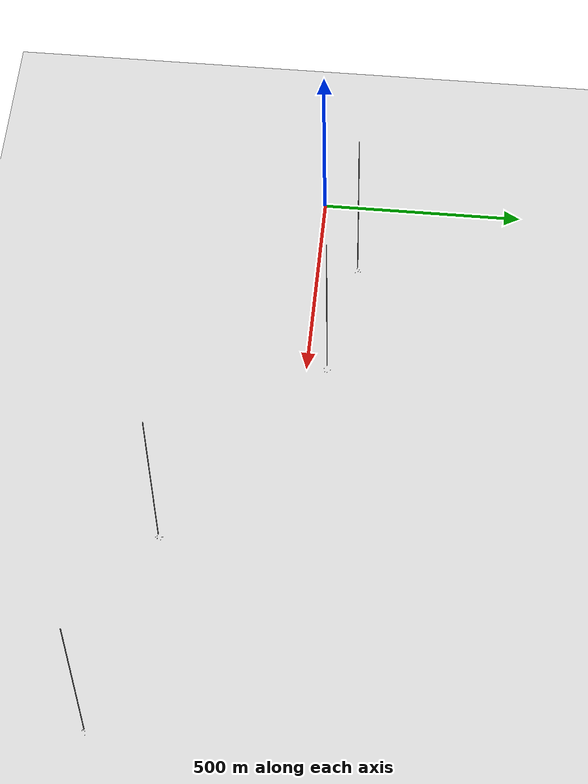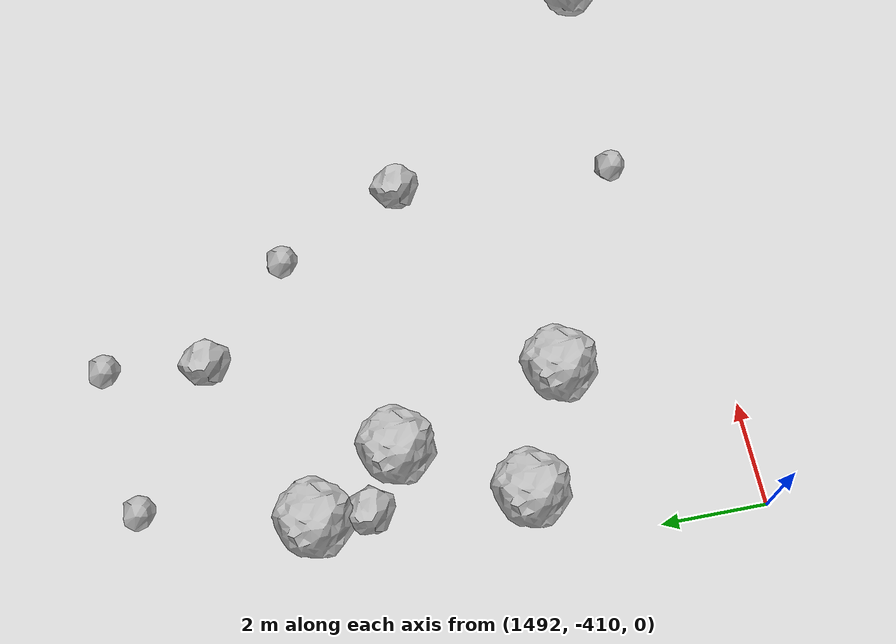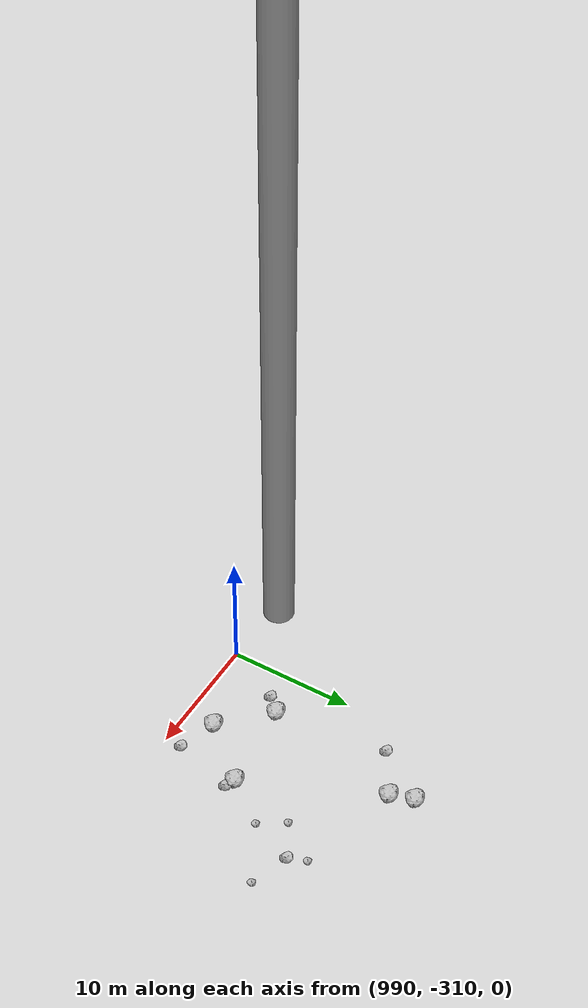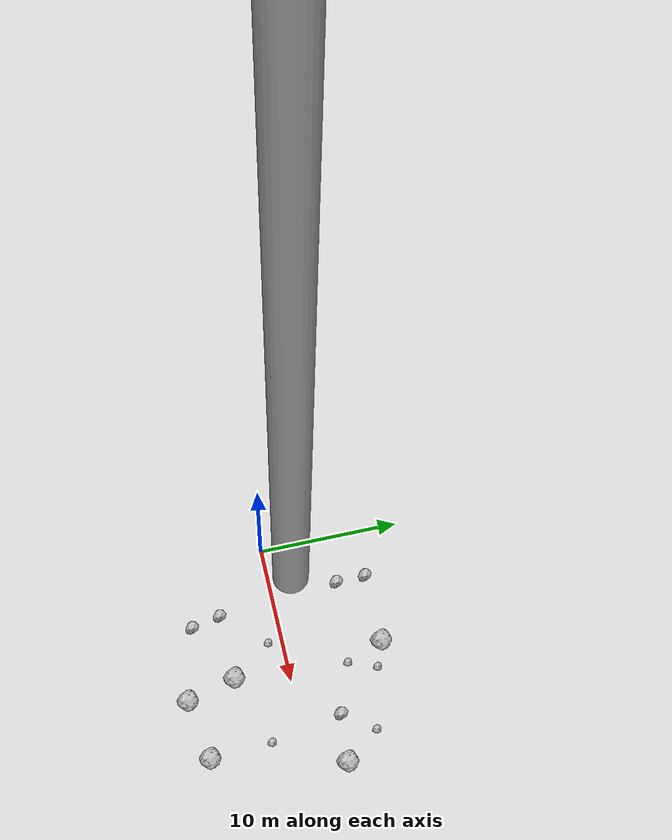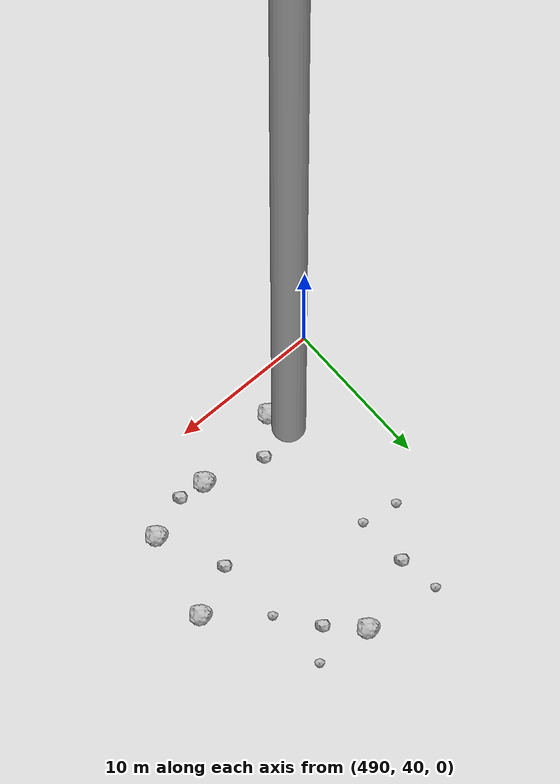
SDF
<?xml version="1.0" ?>
<sdf version="1.6">
  <world name="default">

    <include>
      <uri>model://custom_ground</uri>
    </include>

    <include>
      <uri>model://sun</uri>
    </include>

    <spherical_coordinates>
      <surface_model>EARTH_WGS84</surface_model>
      <latitude_deg>38.161479</latitude_deg>
      <longitude_deg>-122.454630</longitude_deg>
      <elevation>488.0</elevation>
      <heading_deg>90</heading_deg>
    </spherical_coordinates>

    <model name="rock1_0_0">
      <include>
        <uri>model://rock1</uri>
        <pose>14.282473221766805 -6.541813270853938 0.5 0 0 0</pose>
      </include>
    </model>
    <model name="rock1_0_1">
      <include>
        <uri>model://rock1</uri>
        <pose>8.608220406227252 6.780072283379404 0.5 0 0 0</pose>
      </include>
    </model>
    <model name="rock1_0_2">
      <include>
        <uri>model://rock1</uri>
        <pose>9.08124643722343 -3.8135284993997214 0.5 0 0 0</pose>
      </include>
    </model>
    <model name="rock1_0_3">
      <include>
        <uri>model://rock1</uri>
        <pose>10.003770106921559 -7.263664705437371 0.5 0 0 0</pose>
      </include>
    </model>
    <model name="rock1_0_4">
      <include>
        <uri>model://rock1</uri>
        <pose>16.49691729560874 2.506025364816333 0.5 0 0 0</pose>
      </include>
    </model>
    <model name="rock2_0_0">
      <include>
        <uri>model://rock2</uri>
        <pose>4.728759559223398 -5.955498742989709 0.3 0 0 0</pose>
      </include>
    </model>
    <model name="rock2_0_1">
      <include>
        <uri>model://rock2</uri>
        <pose>3.505365785905923 6.859919755507185 0.3 0 0 0</pose>
      </include>
    </model>
    <model name="rock2_0_2">
      <include>
        <uri>model://rock2</uri>
        <pose>13.053172031917782 2.855694127243993 0.3 0 0 0</pose>
      </include>
    </model>
    <model name="rock2_0_3">
      <include>
        <uri>model://rock2</uri>
        <pose>3.5583332384563815 4.750340054283491 0.3 0 0 0</pose>
      </include>
    </model>
    <model name="rock2_0_4">
      <include>
        <uri>model://rock2</uri>
        <pose>4.286497587022307 -3.8965781714265795 0.3 0 0 0</pose>
      </include>
    </model>
    <model name="rock3_0_0">
      <include>
        <uri>model://rock3</uri>
        <pose>6.9604855431901 -0.9890365495011864 0.2 0 0 0</pose>
      </include>
    </model>
    <model name="rock3_0_1">
      <include>
        <uri>model://rock3</uri>
        <pose>14.633510965118727 4.976888527124823 0.2 0 0 0</pose>
      </include>
    </model>
    <model name="rock3_0_2">
      <include>
        <uri>model://rock3</uri>
        <pose>9.553993024239833 4.149317382156024 0.2 0 0 0</pose>
      </include>
    </model>
    <model name="rock3_0_3">
      <include>
        <uri>model://rock3</uri>
        <pose>13.984841646783702 -2.213399155919406 0.2 0 0 0</pose>
      </include>
    </model>
    <model name="rock3_0_4">
      <include>
        <uri>model://rock3</uri>
        <pose>10.31041812376682 6.102980444797904 0.2 0 0 0</pose>
      </include>
    </model>
    <model name="rock1_1_0">
      <include>
        <uri>model://rock1</uri>
        <pose>190.66679078531567 97.47396516944973 0.5 0 0 0</pose>
      </include>
    </model>
    <model name="rock1_1_1">
      <include>
        <uri>model://rock1</uri>
        <pose>203.1644703667694 94.56113320485143 0.5 0 0 0</pose>
      </include>
    </model>
    <model name="rock1_1_2">
      <include>
        <uri>model://rock1</uri>
        <pose>202.99351098685935 104.93904819255101 0.5 0 0 0</pose>
      </include>
    </model>
    <model name="rock1_1_3">
      <include>
        <uri>model://rock1</uri>
        <pose>194.03897529818022 103.58874333359566 0.5 0 0 0</pose>
      </include>
    </model>
    <model name="rock1_1_4">
      <include>
        <uri>model://rock1</uri>
        <pose>199.52528332916225 106.91490275453327 0.5 0 0 0</pose>
      </include>
    </model>
    <model name="rock2_1_0">
      <include>
        <uri>model://rock2</uri>
        <pose>203.95841990752604 93.73779692213546 0.3 0 0 0</pose>
      </include>
    </model>
    <model name="rock2_1_1">
      <include>
        <uri>model://rock2</uri>
        <pose>208.97926409385508 101.37366537899334 0.3 0 0 0</pose>
      </include>
    </model>
    <model name="rock2_1_2">
      <include>
        <uri>model://rock2</uri>
        <pose>195.96664210332213 96.25906966624744 0.3 0 0 0</pose>
      </include>
    </model>
    <model name="rock2_1_3">
      <include>
        <uri>model://rock2</uri>
        <pose>200.11995894299622 95.79932292599678 0.3 0 0 0</pose>
      </include>
    </model>
    <model name="rock2_1_4">
      <include>
        <uri>model://rock2</uri>
        <pose>198.3943785982686 101.70945180024651 0.3 0 0 0</pose>
      </include>
    </model>
    <model name="rock3_1_0">
      <include>
        <uri>model://rock3</uri>
        <pose>200.93125972346132 102.50054354837616 0.2 0 0 0</pose>
      </include>
    </model>
    <model name="rock3_1_1">
      <include>
        <uri>model://rock3</uri>
        <pose>198.79553383127418 91.10684527526729 0.2 0 0 0</pose>
      </include>
    </model>
    <model name="rock3_1_2">
      <include>
        <uri>model://rock3</uri>
        <pose>198.6043335582913 102.42849797942188 0.2 0 0 0</pose>
      </include>
    </model>
    <model name="rock3_1_3">
      <include>
        <uri>model://rock3</uri>
        <pose>202.57077907603986 108.10065685931582 0.2 0 0 0</pose>
      </include>
    </model>
    <model name="rock3_1_4">
      <include>
        <uri>model://rock3</uri>
        <pose>194.09042010726228 104.08590718201569 0.2 0 0 0</pose>
      </include>
    </model>
    <model name="rock1_2_0">
      <include>
        <uri>model://rock1</uri>
        <pose>505.88896733548194 44.189495280112006 0.5 0 0 0</pose>
      </include>
    </model>
    <model name="rock1_2_1">
      <include>
        <uri>model://rock1</uri>
        <pose>495.2237862707641 42.5566943304794 0.5 0 0 0</pose>
      </include>
    </model>
    <model name="rock1_2_2">
      <include>
        <uri>model://rock1</uri>
        <pose>501.2917285582195 43.39678601420264 0.5 0 0 0</pose>
      </include>
    </model>
    <model name="rock1_2_3">
      <include>
        <uri>model://rock1</uri>
        <pose>499.95352624507893 57.41964891604353 0.5 0 0 0</pose>
      </include>
    </model>
    <model name="rock1_2_4">
      <include>
        <uri>model://rock1</uri>
        <pose>507.2194835259564 49.9614988785665 0.5 0 0 0</pose>
      </include>
    </model>
    <model name="rock2_2_0">
      <include>
        <uri>model://rock2</uri>
        <pose>501.88645721584857 55.41772444223143 0.3 0 0 0</pose>
      </include>
    </model>
    <model name="rock2_2_1">
      <include>
        <uri>model://rock2</uri>
        <pose>495.3220676833293 55.37716360409511 0.3 0 0 0</pose>
      </include>
    </model>
    <model name="rock2_2_2">
      <include>
        <uri>model://rock2</uri>
        <pose>503.90972158022964 48.45009312093409 0.3 0 0 0</pose>
      </include>
    </model>
    <model name="rock2_2_3">
      <include>
        <uri>model://rock2</uri>
        <pose>497.27768731633023 44.54690412443465 0.3 0 0 0</pose>
      </include>
    </model>
    <model name="rock2_2_4">
      <include>
        <uri>model://rock2</uri>
        <pose>503.0412618089708 43.16918717067067 0.3 0 0 0</pose>
      </include>
    </model>
    <model name="rock3_2_0">
      <include>
        <uri>model://rock3</uri>
        <pose>495.4542234641676 51.87025784293293 0.2 0 0 0</pose>
      </include>
    </model>
    <model name="rock3_2_1">
      <include>
        <uri>model://rock3</uri>
        <pose>503.7589720254465 52.83826500852081 0.2 0 0 0</pose>
      </include>
    </model>
    <model name="rock3_2_2">
      <include>
        <uri>model://rock3</uri>
        <pose>503.59589528170414 57.07745307162492 0.2 0 0 0</pose>
      </include>
    </model>
    <model name="rock3_2_3">
      <include>
        <uri>model://rock3</uri>
        <pose>494.89437759003533 58.05722618100206 0.2 0 0 0</pose>
      </include>
    </model>
    <model name="rock3_2_4">
      <include>
        <uri>model://rock3</uri>
        <pose>493.0380767912778 52.25726439248041 0.2 0 0 0</pose>
      </include>
    </model>
    <model name="rock1_3_0">
      <include>
        <uri>model://rock1</uri>
        <pose>993.7015138553709 -304.15277288582615 0.5 0 0 0</pose>
      </include>
    </model>
    <model name="rock1_3_1">
      <include>
        <uri>model://rock1</uri>
        <pose>1000.7299808166977 -303.4286053102638 0.5 0 0 0</pose>
      </include>
    </model>
    <model name="rock1_3_2">
      <include>
        <uri>model://rock1</uri>
        <pose>995.4148005126285 -291.2799077358088 0.5 0 0 0</pose>
      </include>
    </model>
    <model name="rock1_3_3">
      <include>
        <uri>model://rock1</uri>
        <pose>997.1560721608233 -307.5888687354902 0.5 0 0 0</pose>
      </include>
    </model>
    <model name="rock1_3_4">
      <include>
        <uri>model://rock1</uri>
        <pose>996.0403897516588 -293.10714119760615 0.5 0 0 0</pose>
      </include>
    </model>
    <model name="rock2_3_0">
      <include>
        <uri>model://rock2</uri>
        <pose>992.4830087994378 -305.3286776140067 0.3 0 0 0</pose>
      </include>
    </model>
    <model name="rock2_3_1">
      <include>
        <uri>model://rock2</uri>
        <pose>1004.4894049696857 -296.6546889945572 0.3 0 0 0</pose>
      </include>
    </model>
    <model name="rock2_3_2">
      <include>
        <uri>model://rock2</uri>
        <pose>1000.0544793553725 -308.58264920575425 0.3 0 0 0</pose>
      </include>
    </model>
    <model name="rock2_3_3">
      <include>
        <uri>model://rock2</uri>
        <pose>1001.4138381686248 -303.7736195251195 0.3 0 0 0</pose>
      </include>
    </model>
    <model name="rock2_3_4">
      <include>
        <uri>model://rock2</uri>
        <pose>992.5104239717102 -295.18238952668315 0.3 0 0 0</pose>
      </include>
    </model>
    <model name="rock3_3_0">
      <include>
        <uri>model://rock3</uri>
        <pose>1003.8898700631765 -295.3166358275912 0.2 0 0 0</pose>
      </include>
    </model>
    <model name="rock3_3_1">
      <include>
        <uri>model://rock3</uri>
        <pose>1003.0750380747182 -300.1641047209649 0.2 0 0 0</pose>
      </include>
    </model>
    <model name="rock3_3_2">
      <include>
        <uri>model://rock3</uri>
        <pose>1001.7781488111631 -298.18836810699867 0.2 0 0 0</pose>
      </include>
    </model>
    <model name="rock3_3_3">
      <include>
        <uri>model://rock3</uri>
        <pose>992.3342084957156 -295.18603292194894 0.2 0 0 0</pose>
      </include>
    </model>
    <model name="rock3_3_4">
      <include>
        <uri>model://rock3</uri>
        <pose>1007.4568657666098 -297.77004454490094 0.2 0 0 0</pose>
      </include>
    </model>
    <model name="rock1_4_0">
      <include>
        <uri>model://rock1</uri>
        <pose>1493.0473536545448 -405.7515200708565 0.5 0 0 0</pose>
      </include>
    </model>
    <model name="rock1_4_1">
      <include>
        <uri>model://rock1</uri>
        <pose>1495.3032084725187 -406.79692274538485 0.5 0 0 0</pose>
      </include>
    </model>
    <model name="rock1_4_2">
      <include>
        <uri>model://rock1</uri>
        <pose>1503.6868419932825 -408.933562885356 0.5 0 0 0</pose>
      </include>
    </model>
    <model name="rock1_4_3">
      <include>
        <uri>model://rock1</uri>
        <pose>1493.251079775429 -401.80066478436214 0.5 0 0 0</pose>
      </include>
    </model>
    <model name="rock1_4_4">
      <include>
        <uri>model://rock1</uri>
        <pose>1494.3136856244885 -403.4960218364184 0.5 0 0 0</pose>
      </include>
    </model>
    <model name="rock2_4_0">
      <include>
        <uri>model://rock2</uri>
        <pose>1496.6478694244186 -400.2791292507558 0.3 0 0 0</pose>
      </include>
    </model>
    <model name="rock2_4_1">
      <include>
        <uri>model://rock2</uri>
        <pose>1503.6743607879005 -395.1539056167024 0.3 0 0 0</pose>
      </include>
    </model>
    <model name="rock2_4_2">
      <include>
        <uri>model://rock2</uri>
        <pose>1499.6337702528335 -404.49306337218434 0.3 0 0 0</pose>
      </include>
    </model>
    <model name="rock2_4_3">
      <include>
        <uri>model://rock2</uri>
        <pose>1493.2288654847493 -402.80459637262453 0.3 0 0 0</pose>
      </include>
    </model>
    <model name="rock2_4_4">
      <include>
        <uri>model://rock2</uri>
        <pose>1505.980584296467 -399.16505329308825 0.3 0 0 0</pose>
      </include>
    </model>
    <model name="rock3_4_0">
      <include>
        <uri>model://rock3</uri>
        <pose>1493.9973616551342 -398.6966668013704 0.2 0 0 0</pose>
      </include>
    </model>
    <model name="rock3_4_1">
      <include>
        <uri>model://rock3</uri>
        <pose>1499.314063144854 -408.86003623624623 0.2 0 0 0</pose>
      </include>
    </model>
    <model name="rock3_4_2">
      <include>
        <uri>model://rock3</uri>
        <pose>1509.979793838738 -399.56098590675396 0.2 0 0 0</pose>
      </include>
    </model>
    <model name="rock3_4_3">
      <include>
        <uri>model://rock3</uri>
        <pose>1496.8634195727332 -398.38197900202596 0.2 0 0 0</pose>
      </include>
    </model>
    <model name="rock3_4_4">
      <include>
        <uri>model://rock3</uri>
        <pose>1498.4737795483304 -402.04968107593675 0.2 0 0 0</pose>
      </include>
    </model>

    <model name="cylinder_1">
      <static>true</static>
      <link name="link">
        <visual name="visual">
          <geometry>
            <cylinder>
              <radius>1</radius>
              <length>500</length>
            </cylinder>
          </geometry>
        </visual>
      </link>
      <pose>10 0 270 0 0 0</pose>
    </model>

    <model name="cylinder_2">
      <static>true</static>
      <link name="link">
        <visual name="visual">
          <geometry>
            <cylinder>
              <radius>1</radius>
              <length>500</length>
            </cylinder>
          </geometry>
        </visual>
      </link>
      <pose>200 100 270 0 0 0</pose>
    </model>

    <model name="cylinder_3">
      <static>true</static>
      <link name="link">
        <visual name="visual">
          <geometry>
            <cylinder>
              <radius>1</radius>
              <length>500</length>
            </cylinder>
          </geometry>
        </visual>
      </link>
      <pose>500 50 270 0 0 0</pose>
    </model>

    <model name="cylinder_4">
      <static>true</static>
      <link name="link">
        <visual name="visual">
          <geometry>
            <cylinder>
              <radius>1</radius>
              <length>500</length>
            </cylinder>
          </geometry>
        </visual>
      </link>
      <pose>1000 -300 270 0 0 0</pose>
    </model>

    <model name="cylinder_5">
      <static>true</static>
      <link name="link">
        <visual name="visual">
          <geometry>
            <cylinder>
              <radius>1</radius>
              <length>500</length>
            </cylinder>
          </geometry>
        </visual>
      </link>
      <pose>1500 -400 270 0 0 0</pose>
    </model>

  </world>
</sdf>

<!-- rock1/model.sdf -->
<sdf version="1.6">
  <model name="rock1">
    <static>true</static> <!-- Set to true if the model should not move -->
    <pose>0 0 0 0 0 0</pose>

    <!--z offset is 0.5 for full scale-->

    <link name="link">
      <collision name="rock1_collision">
        <geometry>
          <mesh>
            <uri>model://meshes/rock1.dae</uri>
          </mesh>
        </geometry>
      </collision>
      <visual name="rock1_visual">
        <geometry>
          <mesh>
            <uri>model://meshes/rock1.dae</uri>
          </mesh>
        </geometry>
        <material>
          <script>
            <uri>model://materials/scripts/sand_pebbles.material</uri>
            <name>custom_ground/Image</name>
          </script>
        </material>
      </visual>
    </link>
  </model>
</sdf>

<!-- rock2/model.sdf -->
<sdf version="1.6">
  <model name="rock2">
    <static>true</static> <!-- Set to true if the model should not move -->
    <pose>0 0 0 0 0 0</pose>

    <!--z offset is 0.3 for full scale-->

    <link name="link">
      <collision name="rock2_collision">
        <geometry>
          <mesh>
            <uri>model://meshes/rock2.dae</uri>
          </mesh>
        </geometry>
      </collision>
      <visual name="rock2_visual">
        <geometry>
          <mesh>
            <uri>model://meshes/rock2.dae</uri>
          </mesh>
        </geometry>
        <material>
          <script>
            <uri>model://materials/scripts/sand_pebbles.material</uri>
            <name>custom_ground/Image</name>
          </script>
        </material>
      </visual>
    </link>
  </model>
</sdf>

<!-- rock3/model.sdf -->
<sdf version="1.6">
  <model name="rock3">
    <static>true</static> <!-- Set to true if the model should not move -->
    <pose>0 0 0 0 0 0</pose>

    <!--z offset is 0.2 for full scale-->

    <link name="link">
      <collision name="rock3_collision">
        <geometry>
          <mesh>
            <uri>model://meshes/rock3.dae</uri>
          </mesh>
        </geometry>
      </collision>
      <visual name="rock3_visual">
        <geometry>
          <mesh>
            <uri>model://meshes/rock3.dae</uri>
          </mesh>
        </geometry>
        <material>
          <script>
            <uri>model://materials/scripts/sand_pebbles.material</uri>
            <name>custom_ground/Image</name>
          </script>
        </material>
      </visual>
    </link>
  </model>
</sdf>

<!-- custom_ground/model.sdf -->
<sdf version="1.6">
  <model name="custom_ground">
    <static>true</static> <!-- Ground is static and immovable -->
    <link name="ground_link">
      <pose>240 0 0 0 0 0</pose> <!-- Position and orientation relative to the world -->
      <!-- Visual Representation -->
      <visual name="ground_visual">
        <geometry>
          <plane>
            <normal>0 0 1</normal> <!-- Upward facing plane -->
            <size>500 500</size> <!-- Size of the plane -->
          </plane>
        </geometry>
        <material>
          <script>
            <uri>model://materials/scripts/sand_pebbles.material</uri>
            <name>custom_ground/Image</name>
          </script>
        </material>
      </visual>

      <!-- Collision Representation -->
      <collision name="ground_collision">
        <geometry>
          <plane>
            <normal>0 0 1</normal>
            <size>100 100</size>
          </plane>
        </geometry>
      </collision>

    </link>
  </model>
</sdf>
